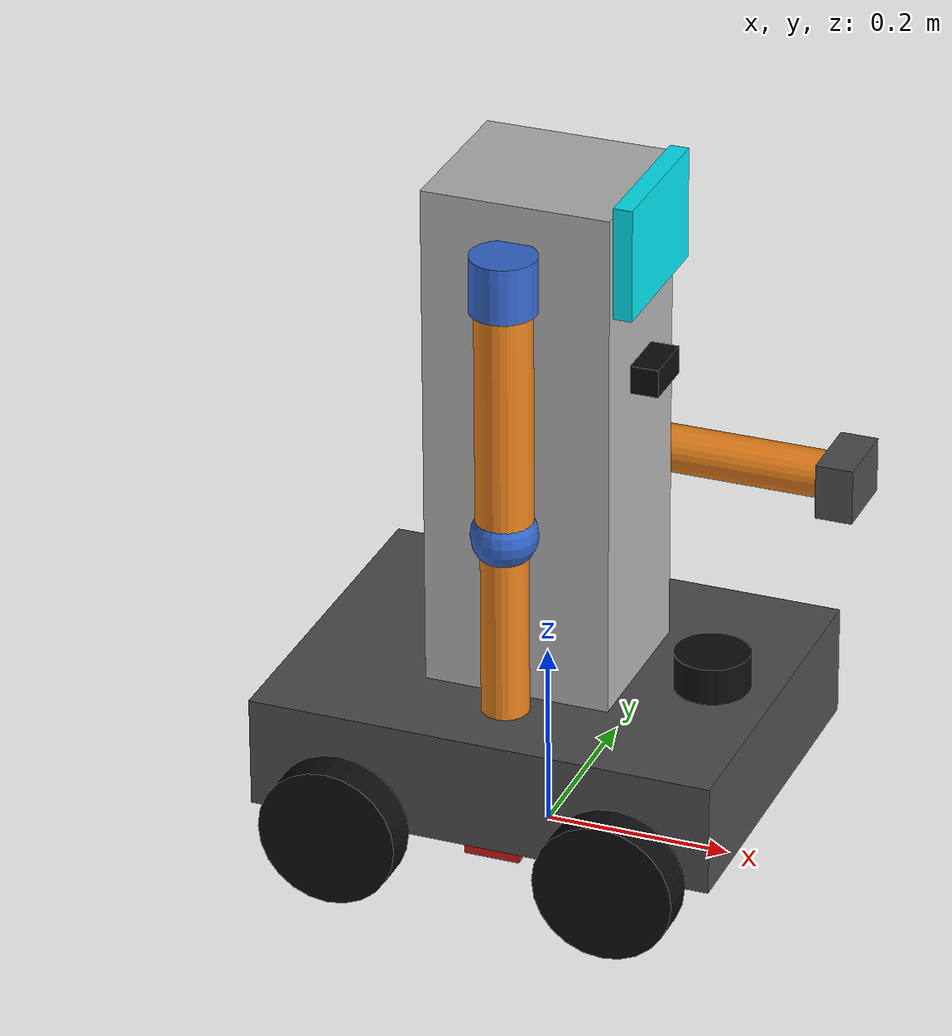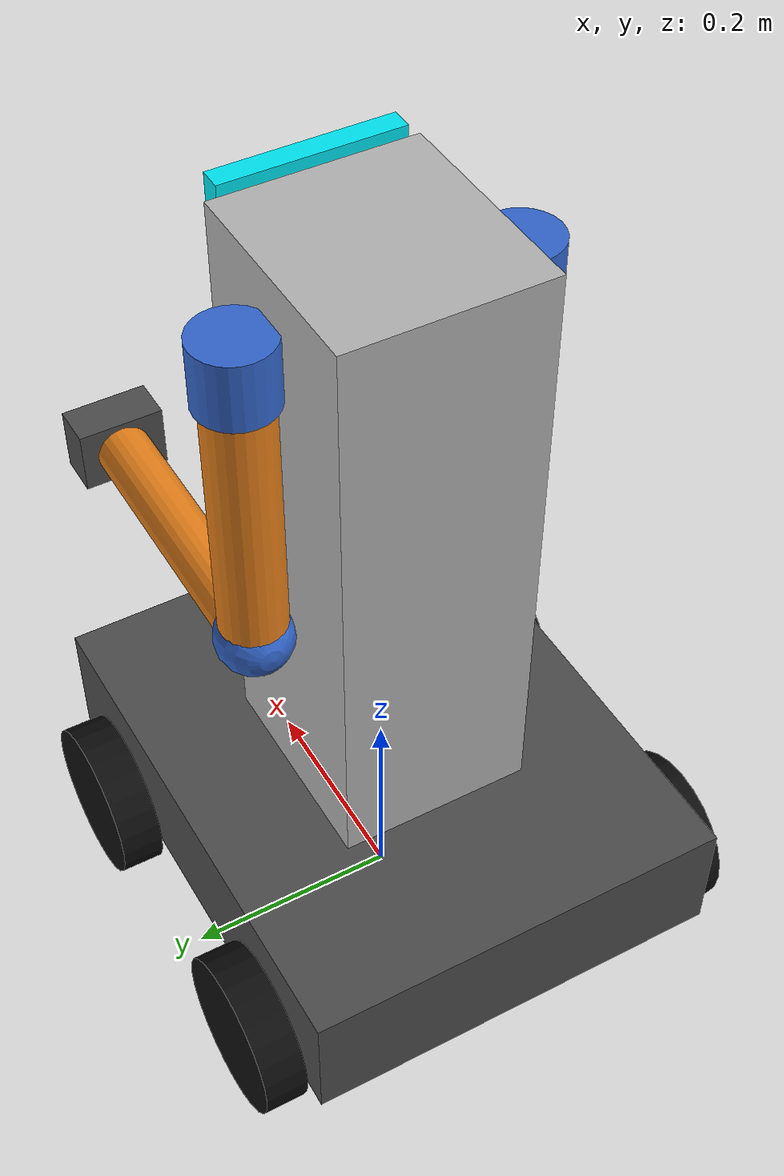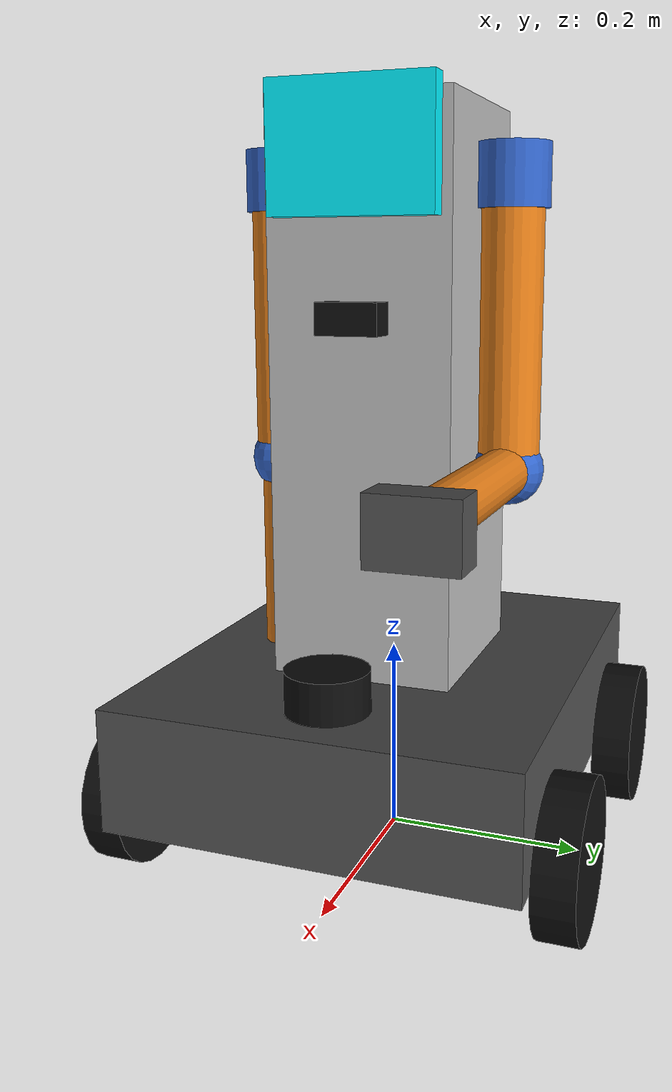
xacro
<?xml version ="1.0"?>
<robot name="tidying_robot" xmlns:xacro="http://www.ros.org/wiki/xacro">

    <!-- Define materials -->
    <material name="dark_grey">
        <color rgba="0.3 0.3 0.3 1.0"/>
    </material>
    <material name="light_grey">
        <color rgba="0.7 0.7 0.7 1.0"/>
    </material>
    <material name="blue">
        <color rgba="0.2 0.4 0.8 1.0"/>
    </material>
    <material name="black">
        <color rgba="0.05 0.05 0.05 1.0"/>
    </material>
    <material name="orange">
        <color rgba="0.9 0.5 0.1 1.0"/>
    </material>
    <material name="white">
        <color rgba="0.95 0.95 0.95 1.0"/>
    </material>
    <material name="cyan_glow">
        <color rgba="0.0 0.9 0.95 1.0"/>
    </material>
    <material name="red">
        <color rgba="0.8 0.1 0.1 1.0"/>
    </material>

    <!-- Base Link -->
    <link name="base_link">
    <visual>
      <geometry>
        <box size="0.50 0.40 0.12"/>
      </geometry>
      <origin xyz="0 0 0.06" rpy="0 0 0"/>
      <material name="dark_grey"/>
    </visual>
    <collision>
      <geometry>
        <box size="0.50 0.40 0.12"/>
      </geometry>
      <origin xyz="0 0 0.06" rpy="0 0 0"/>
    </collision>
    <inertial>
      <mass value="12.0"/>
      <origin xyz="0 0 0.06" rpy="0 0 0"/>
      <!-- Ixx=1/12*m*(y^2+z^2), Iyy=1/12*m*(x^2+z^2), Izz=1/12*m*(x^2+y^2) -->
      <inertia ixx="0.1744" iyy="0.2644" izz="0.4100"
               ixy="0" ixz="0" iyz="0"/>
        </inertial>
    </link>

    <!-- Dummy base_footprint for nav stack compatibility -->
    <link name="base_footprint"/>
    <joint name="base_footprint_joint" type="fixed">
        <parent link="base_footprint"/>
        <child link="base_link"/>
        <origin xyz="0 0 0.075" rpy="0 0 0"/>
    </joint>

    <!-- ==Wheels== -->
    <!-- Front Left Wheel -->
    <link name="front_left_wheel">
        <visual>
        <geometry>
            <cylinder radius="0.075" length="0.04"/>
        </geometry>
        <material name="black"/>
        </visual>
        <collision>
        <geometry>
            <cylinder radius="0.075" length="0.04"/>
        </geometry>
        <surface>
        <friction>
            <ode>
            <mu>1.0</mu>
            <mu2>0.8</mu2>
            <kp>1000000</kp>
            <kd>100</kd>
            </ode>
        </friction>
        </surface>
        </collision>
        <inertial>
        <mass value="0.8"/>
        <inertia ixx="0.001231" iyy="0.001231" izz="0.002250"
                ixy="0" ixz="0" iyz="0"/>
        </inertial>
    </link>
    <joint name="front_left_wheel_joint" type="continuous">
        <parent link="base_link"/>
        <child link="front_left_wheel"/>
        <!-- Wheel center at x=+0.15 (front), y=+0.22 (left), z=0 (ground contact) -->
        <origin xyz="0.15 0.22 0.0" rpy="-1.5708 0 0"/>
        <axis xyz="0 0 1"/>
        <dynamics damping="0.1" friction="0.05"/>
    </joint>

    <!-- Front-Right Wheel -->
    <link name="front_right_wheel">
        <visual>
        <geometry>
            <cylinder radius="0.075" length="0.04"/>
        </geometry>
        <material name="black"/>
        </visual>
        <collision>
        <geometry>
            <cylinder radius="0.075" length="0.04"/>
        </geometry>
        <surface>
        <friction>
            <ode>
            <mu>1.0</mu>
            <mu2>0.8</mu2>
            <kp>1000000</kp>
            <kd>100</kd>
            </ode>
        </friction>
        </surface>
        </collision>
        <inertial>
        <mass value="0.8"/>
        <inertia ixx="0.001231" iyy="0.001231" izz="0.002250"
                ixy="0" ixz="0" iyz="0"/>
        </inertial>
    </link>
    <joint name="front_right_wheel_joint" type="continuous">
        <parent link="base_link"/>
        <child link="front_right_wheel"/>
        <origin xyz="0.15 -0.22 0.0" rpy="-1.5708 0 0"/>
        <axis xyz="0 0 1"/>
        <dynamics damping="0.1" friction="0.05"/>
    </joint>

    <!-- Rear-Left Wheel -->
    <link name="rear_left_wheel">
        <visual>
        <geometry>
            <cylinder radius="0.075" length="0.04"/>
        </geometry>
        <material name="black"/>
        </visual>
        <collision>
        <geometry>
            <cylinder radius="0.075" length="0.04"/>
        </geometry>
        <surface>
        <friction>
            <ode>
            <mu>1.0</mu>
            <mu2>0.8</mu2>
            <kp>1000000</kp>
            <kd>100</kd>
            </ode>
        </friction>
        </surface>
        </collision>
        <inertial>
        <mass value="0.8"/>
        <inertia ixx="0.001231" iyy="0.001231" izz="0.002250"
                ixy="0" ixz="0" iyz="0"/>
        </inertial>
    </link>
    <joint name="rear_left_wheel_joint" type="continuous">
        <parent link="base_link"/>
        <child link="rear_left_wheel"/>
        <origin xyz="-0.15 0.22 0.0" rpy="-1.5708 0 0"/>
        <axis xyz="0 0 1"/>
        <dynamics damping="0.1" friction="0.05"/>
    </joint>

    <!-- Rear-Right Wheel -->
    <link name="rear_right_wheel">
        <visual>
        <geometry>
            <cylinder radius="0.075" length="0.04"/>
        </geometry>
        <material name="black"/>
        </visual>
        <collision>
        <geometry>
            <cylinder radius="0.075" length="0.04"/>
        </geometry>
        <surface>
        <friction>
        <ode>
            <mu>1.0</mu>
            <mu2>0.8</mu2>
            <kp>1000000</kp>
            <kd>100</kd>
        </ode>
        </friction>
        </surface>
        </collision>
        <inertial>
        <mass value="0.8"/>
        <inertia ixx="0.001231" iyy="0.001231" izz="0.002250"
                ixy="0" ixz="0" iyz="0"/>
        </inertial>
    </link>
    <joint name="rear_right_wheel_joint" type="continuous">
        <parent link="base_link"/>
        <child link="rear_right_wheel"/>
        <origin xyz="-0.15 -0.22 0.0" rpy="-1.5708 0 0"/>
        <axis xyz="0 0 1"/>
        <dynamics damping="0.1" friction="0.05"/>
    </joint>

    <!--=======TORSO(vertical column: 0.20 x 0.18 x 0.55, Sits on top of base. Mass ~5 kg=====-->
    <link name="torso_link">
    <visual>
      <geometry>
        <box size="0.20 0.18 0.55"/>
      </geometry>
      <origin xyz="0 0 0.275" rpy="0 0 0"/>
      <material name="light_grey"/>
    </visual>
    <collision>
      <geometry>
        <box size="0.20 0.18 0.55"/>
      </geometry>
      <origin xyz="0 0 0.275" rpy="0 0 0"/>
    </collision>
    <inertial>
      <mass value="5.0"/>
      <origin xyz="0 0 0.275" rpy="0 0 0"/>
      <inertia ixx="0.1394" iyy="0.1427" izz="0.0302"
               ixy="0" ixz="0" iyz="0"/>
    </inertial>
    </link>
    <joint name="torso_joint" type="fixed">
        <parent link="base_link"/>
        <child link="torso_link"/>
        <origin xyz="0 0 0.12" rpy="0 0 0"/>
    </joint>
    <!--===HEAD / LED FACE PANEL===-->
    <link name="head_link">
    <visual>
      <geometry>
        <box size="0.02 0.16 0.12"/>
      </geometry>
      <origin xyz="0 0 0.0" rpy="0 0 0"/>
      <material name="cyan_glow"/>
    </visual>
    <collision>
      <geometry>
        <box size="0.02 0.16 0.12"/>
      </geometry>
      <origin xyz="0 0 0.0" rpy="0 0 0"/>
    </collision>
    <inertial>
      <mass value="0.3"/>
      <origin xyz="0 0 0.0" rpy="0 0 0"/>
      <inertia ixx="0.001010" iyy="0.000370" izz="0.000650"
               ixy="0" ixz="0" iyz="0"/>
    </inertial>
    </link>
    <joint name="head_joint" type="fixed">
        <parent link="torso_link"/>
        <child link="head_link"/>
        <!-- Mounted on the front face of torso, at the top -->
        <origin xyz="0.11 0 0.50" rpy="0 0 0"/>
    </joint>

    <!-- ===RIGHT ARM (3 DOF) === -->
    <!-- Shoulder link -->
  <link name="right_shoulder_link">
    <visual>
      <geometry>
        <cylinder radius="0.035" length="0.06"/>
      </geometry>
      <origin xyz="0 0 0" rpy="0 0 0"/>
      <material name="blue"/>
    </visual>
    <collision>
      <geometry>
        <cylinder radius="0.035" length="0.06"/>
      </geometry>
      <origin xyz="0 0 0" rpy="0 0 0"/>
    </collision>
    <inertial>
      <mass value="0.6"/>
      <inertia ixx="0.000207" iyy="0.000207" izz="0.000368"
               ixy="0" ixz="0" iyz="0"/>
    </inertial>
  </link>
  <joint name="right_shoulder_joint" type="revolute">
    <parent link="torso_link"/>
    <child link="right_shoulder_link"/>
    <!-- Shoulder on right side, near top of torso -->
    <origin xyz="0.0 -0.12 0.48" rpy="0 0 0"/>
    <axis xyz="0 1 0"/>
    <limit lower="-2.356" upper="2.356" effort="30.0" velocity="1.5"/>
    <dynamics damping="0.5" friction="0.1"/>
  </joint>

  <!-- Upper arm -->
  <link name="right_upper_arm_link">
    <visual>
      <geometry>
        <cylinder radius="0.03" length="0.28"/>
      </geometry>
      <origin xyz="0 0 -0.14" rpy="0 0 0"/>
      <material name="orange"/>
    </visual>
    <collision>
      <geometry>
        <cylinder radius="0.03" length="0.28"/>
      </geometry>
      <origin xyz="0 0 -0.14" rpy="0 0 0"/>
    </collision>
    <inertial>
      <mass value="1.0"/>
      <origin xyz="0 0 -0.14" rpy="0 0 0"/>
      <!-- cylinder: Ixx=Iyy=1/12*m*(3r^2+h^2), Izz=1/2*m*r^2 -->
      <inertia ixx="0.006758" iyy="0.006758" izz="0.000450"
               ixy="0" ixz="0" iyz="0"/>
    </inertial>
  </link>
  <joint name="right_upper_arm_joint" type="fixed">
    <parent link="right_shoulder_link"/>
    <child link="right_upper_arm_link"/>
    <origin xyz="0 0 0" rpy="0 0 0"/>
  </joint>

  <!-- Elbow -->
  <link name="right_elbow_link">
    <visual>
      <geometry>
        <sphere radius="0.035"/>
      </geometry>
      <material name="blue"/>
    </visual>
    <collision>
      <geometry>
        <sphere radius="0.035"/>
      </geometry>
    </collision>
    <inertial>
      <mass value="0.4"/>
      <inertia ixx="0.000196" iyy="0.000196" izz="0.000196"
               ixy="0" ixz="0" iyz="0"/>
    </inertial>
    </link>

    <joint name="right_elbow_joint" type="revolute">
        <parent link="right_upper_arm_link"/>
        <child link="right_elbow_link"/>
        <origin xyz="0 0 -0.28" rpy="0 0 0"/>
        <axis xyz="0 1 0"/>
        <limit lower="-2.356" upper="0.0" effort="20.0" velocity="1.5"/>
        <dynamics damping="0.4" friction="0.08"/>
    </joint>

    <!-- Forearm -->
    <link name="right_forearm_link">
    <visual>
      <geometry>
        <cylinder radius="0.025" length="0.26"/>
      </geometry>
      <origin xyz="0 0 -0.13" rpy="0 0 0"/>
      <material name="orange"/>
    </visual>
    <collision>
      <geometry>
        <cylinder radius="0.025" length="0.26"/>
      </geometry>
      <origin xyz="0 0 -0.13" rpy="0 0 0"/>
    </collision>
    <inertial>
      <mass value="0.7"/>
      <origin xyz="0 0 -0.13" rpy="0 0 0"/>
      <inertia ixx="0.004011" iyy="0.004011" izz="0.000219"
               ixy="0" ixz="0" iyz="0"/>
    </inertial>
    </link>
    <joint name="right_forearm_joint" type="fixed">
        <parent link="right_elbow_link"/>
        <child link="right_forearm_link"/>
        <origin xyz="0 0 0" rpy="0 0 0"/>
    </joint>

    <!-- Wrist -->
    <link name="right_wrist_link">
    <visual>
      <geometry>
        <cylinder radius="0.025" length="0.03"/>
      </geometry>
      <material name="blue"/>
    </visual>
    <collision>
      <geometry>
        <cylinder radius="0.025" length="0.03"/>
      </geometry>
    </collision>
    <inertial>
      <mass value="0.2"/>
      <inertia ixx="0.0000194" iyy="0.0000194" izz="0.0000625"
               ixy="0" ixz="0" iyz="0"/>
    </inertial>
    </link>
    <joint name="right_wrist_joint" type="revolute">
        <parent link="right_forearm_link"/>
        <child link="right_wrist_link"/>
        <origin xyz="0 0 -0.26" rpy="0 0 0"/>
        <axis xyz="0 1 0"/>
        <limit lower="-1.571" upper="1.571" effort="10.0" velocity="2.0"/>
        <dynamics damping="0.3" friction="0.05"/>
    </joint>

    <!-- Gripper (parallel-jaw style, modeled as two finger pads + a palm) -->
    <!-- Palm -->
    <link name="right_gripper_palm">
    <visual>
      <geometry>
        <box size="0.06 0.08 0.02"/>
      </geometry>
      <material name="dark_grey"/>
    </visual>
    <collision>
      <geometry>
        <box size="0.06 0.08 0.02"/>
      </geometry>
    </collision>
    <inertial>
      <mass value="0.15"/>
      <inertia ixx="0.0000853" iyy="0.0000503" izz="0.000125"
               ixy="0" ixz="0" iyz="0"/>
    </inertial>
    </link>
    <joint name="right_gripper_palm_joint" type="fixed">
        <parent link="right_wrist_link"/>
        <child link="right_gripper_palm"/>
        <origin xyz="0 0 -0.025" rpy="0 0 0"/>
    </joint>

    <!-- Left Finger -->
    <link name="right_gripper_left_finger">
    <visual>
      <geometry>
        <box size="0.06 0.01 0.06"/>
      </geometry>
      <origin xyz="0 0 -0.03" rpy="0 0 0"/>
      <material name="red"/>
    </visual>
    <collision>
      <geometry>
        <box size="0.06 0.01 0.06"/>
      </geometry>
      <origin xyz="0 0 -0.03" rpy="0 0 0"/>
    </collision>
    <inertial>
      <mass value="0.05"/>
      <origin xyz="0 0 -0.03" rpy="0 0 0"/>
      <inertia ixx="0.0000175" iyy="0.0000154" izz="0.0000042"
               ixy="0" ixz="0" iyz="0"/>
    </inertial>
    </link>
    <joint name="right_gripper_left_finger_joint" type="prismatic">
        <parent link="right_gripper_palm"/>
        <child link="right_gripper_left_finger"/>
        <origin xyz="0 0.035 -0.01" rpy="0 0 0"/>
        <axis xyz="0 1 0"/>
        <limit lower="0.0" upper="0.02" effort="5.0" velocity="0.5"/>
        <dynamics damping="0.2" friction="0.05"/>
    </joint>

    <!-- Right Finger -->
    <link name="right_gripper_right_finger">
    <visual>
      <geometry>
        <box size="0.06 0.01 0.06"/>
      </geometry>
      <origin xyz="0 0 -0.03" rpy="0 0 0"/>
      <material name="red"/>
    </visual>
    <collision>
      <geometry>
        <box size="0.06 0.01 0.06"/>
      </geometry>
      <origin xyz="0 0 -0.03" rpy="0 0 0"/>
    </collision>
    <inertial>
      <mass value="0.05"/>
      <origin xyz="0 0 -0.03" rpy="0 0 0"/>
      <inertia ixx="0.0000175" iyy="0.0000154" izz="0.0000042"
               ixy="0" ixz="0" iyz="0"/>
        </inertial>
    </link>
    <joint name="right_gripper_right_finger_joint" type="prismatic">
        <parent link="right_gripper_palm"/>
        <child link="right_gripper_right_finger"/>
        <origin xyz="0 -0.035 -0.01" rpy="0 0 0"/>
        <axis xyz="0 -1 0"/>
        <limit lower="0.0" upper="0.02" effort="5.0" velocity="0.5"/>
        <dynamics damping="0.2" friction="0.05"/>
    </joint>

    <!--  LEFT ARM (cosmetic / static — mirrors right arm visually)    -->
    <link name="left_shoulder_link">
    <visual>
      <geometry>
        <cylinder radius="0.035" length="0.06"/>
      </geometry>
      <material name="blue"/>
    </visual>
    <collision>
      <geometry>
        <cylinder radius="0.035" length="0.06"/>
      </geometry>
    </collision>
    <inertial>
      <mass value="0.6"/>
      <inertia ixx="0.000207" iyy="0.000207" izz="0.000368"
               ixy="0" ixz="0" iyz="0"/>
    </inertial>
    </link>
    <joint name="left_shoulder_joint" type="fixed">
        <parent link="torso_link"/>
        <child link="left_shoulder_link"/>
        <origin xyz="0.0 0.12 0.48" rpy="0 0 0"/>
    </joint>

    <link name="left_upper_arm_link">
    <visual>
      <geometry>
        <cylinder radius="0.03" length="0.28"/>
      </geometry>
      <origin xyz="0 0 -0.14" rpy="0 0 0"/>
      <material name="orange"/>
    </visual>
    <collision>
      <geometry>
        <cylinder radius="0.03" length="0.28"/>
      </geometry>
      <origin xyz="0 0 -0.14" rpy="0 0 0"/>
    </collision>
    <inertial>
      <mass value="1.0"/>
      <origin xyz="0 0 -0.14" rpy="0 0 0"/>
      <inertia ixx="0.006758" iyy="0.006758" izz="0.000450"
               ixy="0" ixz="0" iyz="0"/>
    </inertial>
    </link>
    <joint name="left_upper_arm_joint" type="fixed">
        <parent link="left_shoulder_link"/>
        <child link="left_upper_arm_link"/>
        <origin xyz="0 0 0" rpy="0 0 0"/>
    </joint>

    <link name="left_elbow_link">
    <visual>
      <geometry>
        <sphere radius="0.035"/>
      </geometry>
      <material name="blue"/>
    </visual>
    <collision>
      <geometry>
        <sphere radius="0.035"/>
      </geometry>
    </collision>
    <inertial>
      <mass value="0.4"/>
      <inertia ixx="0.000196" iyy="0.000196" izz="0.000196"
               ixy="0" ixz="0" iyz="0"/>
    </inertial>
    </link>
    <joint name="left_elbow_joint" type="fixed">
        <parent link="left_upper_arm_link"/>
        <child link="left_elbow_link"/>
        <origin xyz="0 0 -0.28" rpy="0 -1.5708 0"/>
    </joint>

    <link name="left_forearm_link">
    <visual>
      <geometry>
        <cylinder radius="0.025" length="0.26"/>
      </geometry>
      <origin xyz="0 0 -0.13" rpy="0 0 0"/>
      <material name="orange"/>
    </visual>
    <collision>
      <geometry>
        <cylinder radius="0.025" length="0.26"/>
      </geometry>
      <origin xyz="0 0 -0.13" rpy="0 0 0"/>
    </collision>
    <inertial>
      <mass value="0.7"/>
      <origin xyz="0 0 -0.13" rpy="0 0 0"/>
      <inertia ixx="0.004011" iyy="0.004011" izz="0.000219"
               ixy="0" ixz="0" iyz="0"/>
    </inertial>
    </link>
    <joint name="left_forearm_joint" type="fixed">
        <parent link="left_elbow_link"/>
        <child link="left_forearm_link"/>
        <origin xyz="0 0 0" rpy="0 0 0"/>
    </joint>

    <link name="left_hand_link">
    <visual>
      <geometry>
        <box size="0.06 0.08 0.04"/>
      </geometry>
      <material name="dark_grey"/>
    </visual>
    <collision>
      <geometry>
        <box size="0.06 0.08 0.04"/>
      </geometry>
    </collision>
    <inertial>
      <mass value="0.2"/>
      <inertia ixx="0.000107" iyy="0.0000867" izz="0.000133"
               ixy="0" ixz="0" iyz="0"/>
    </inertial>
    </link>
    <joint name="left_hand_joint" type="fixed">
        <parent link="left_forearm_link"/>
        <child link="left_hand_link"/>
        <origin xyz="0 0 -0.28" rpy="0 0 0"/>
    </joint>
    <!--  CAMERA — mounted on front of torso (not head)-->
    <link name="camera_link">
    <visual>
      <geometry>
        <box size="0.03 0.06 0.03"/>
      </geometry>
      <material name="black"/>
    </visual>
    <collision>
      <geometry>
        <box size="0.03 0.06 0.03"/>
      </geometry>
    </collision>
    <inertial>
      <mass value="0.1"/>
      <inertia ixx="0.0000375" iyy="0.0000150" izz="0.0000375"
               ixy="0" ixz="0" iyz="0"/>
    </inertial>
    </link>
    <joint name="camera_joint" type="fixed">
        <parent link="torso_link"/>
        <child link="camera_link"/>
        <!-- Front face of torso, roughly mid-height -->
        <origin xyz="0.115 0 0.35" rpy="0 0 0"/>
    </joint>

    <!-- Camera optical frame (ROS convention: z forward, x right, y down) -->
    <link name="camera_optical_frame"/>
    <joint name="camera_optical_joint" type="fixed">
        <parent link="camera_link"/>
        <child link="camera_optical_frame"/>
        <origin xyz="0 0 0" rpy="-1.5708 0 -1.5708"/>
    </joint>

    <!--  LIDAR — 2D scanning LiDAR on top of base, front              -->

    <link name="lidar_link">
        <visual>
        <geometry>
            <cylinder radius="0.04" length="0.04"/>
        </geometry>
        <material name="black"/>
        </visual>
        <collision>
        <geometry>
            <cylinder radius="0.04" length="0.04"/>
        </geometry>
        </collision>
        <inertial>
        <mass value="0.2"/>
        <inertia ixx="0.0000453" iyy="0.0000453" izz="0.000160"
                ixy="0" ixz="0" iyz="0"/>
        </inertial>
    </link>
    <joint name="lidar_joint" type="fixed">
        <parent link="base_link"/>
        <child link="lidar_link"/>
        <!-- Mounted on top of the base plate, front-center -->
        <origin xyz="0.18 0 0.14" rpy="0 0 0"/>
    </joint>
    <!--  GAZEBO PLUGINS  (Gazebo Harmonic / gz-sim)                   -->
    <gazebo>
        <!-- Skid-steer drive controller -->
        <plugin filename="gz-sim-diff-drive-system" name="gz::sim::systems::DiffDrive">
            <left_joint>front_left_wheel_joint</left_joint>
            <left_joint>rear_left_wheel_joint</left_joint>
            <right_joint>front_right_wheel_joint</right_joint>
            <right_joint>rear_right_wheel_joint</right_joint>
            <wheel_separation>0.44</wheel_separation>
            <wheel_radius>0.075</wheel_radius>
            <max_linear_acceleration>1.0</max_linear_acceleration>
            <max_angular_acceleration>2.0</max_angular_acceleration>
            <topic>/cmd_vel</topic>
            <odom_topic>/odom</odom_topic>
            <tf_topic>/tf</tf_topic>
            <frame_id>odom</frame_id>
            <child_frame_id>base_footprint</child_frame_id>
            <odom_publish_frequency>50</odom_publish_frequency>
        </plugin>
        <!-- Joint position controller for arm -->
        <plugin filename="gz-sim-joint-position-controller-system"
                name="gz::sim::systems::JointPositionController">
            <joint_name>right_shoulder_joint</joint_name>
            <topic>/right_shoulder_joint/cmd</topic>
            <p_gain>30.0</p_gain>
            <i_gain>0.1</i_gain>
            <d_gain>5.0</d_gain>
        </plugin>
        <plugin filename="gz-sim-joint-position-controller-system"
                name="gz::sim::systems::JointPositionController">
            <joint_name>right_elbow_joint</joint_name>
            <topic>/right_elbow_joint/cmd</topic>
            <p_gain>20.0</p_gain>
            <i_gain>0.1</i_gain>
            <d_gain>3.0</d_gain>
        </plugin>
        <plugin filename="gz-sim-joint-position-controller-system"
                name="gz::sim::systems::JointPositionController">
            <joint_name>right_wrist_joint</joint_name>
            <topic>/right_wrist_joint/cmd</topic>
            <p_gain>10.0</p_gain>
            <i_gain>0.05</i_gain>
            <d_gain>2.0</d_gain>
        </plugin>
        <plugin filename="gz-sim-joint-position-controller-system"
                name="gz::sim::systems::JointPositionController">
            <joint_name>right_gripper_left_finger_joint</joint_name>
            <topic>/right_gripper_left_finger_joint/cmd</topic>
            <p_gain>5.0</p_gain>
            <i_gain>0.01</i_gain>
            <d_gain>1.0</d_gain>
        </plugin>
        <plugin filename="gz-sim-joint-position-controller-system"
                name="gz::sim::systems::JointPositionController">
            <joint_name>right_gripper_right_finger_joint</joint_name>
            <topic>/right_gripper_right_finger_joint/cmd</topic>
            <p_gain>5.0</p_gain>
            <i_gain>0.01</i_gain>
            <d_gain>1.0</d_gain>
        </plugin>

        <!-- Joint state publisher — feeds robot_state_publisher via bridge -->
        <plugin filename="gz-sim-joint-state-publisher-system"
                name="gz::sim::systems::JointStatePublisher">
            <joint_name>front_left_wheel_joint</joint_name>
            <joint_name>front_right_wheel_joint</joint_name>
            <joint_name>rear_left_wheel_joint</joint_name>
            <joint_name>rear_right_wheel_joint</joint_name>
            <joint_name>right_shoulder_joint</joint_name>
            <joint_name>right_elbow_joint</joint_name>
            <joint_name>right_wrist_joint</joint_name>
            <joint_name>right_gripper_left_finger_joint</joint_name>
            <joint_name>right_gripper_right_finger_joint</joint_name>
            <topic>/joint_states</topic>
        </plugin>

    </gazebo>
    <!-- 2D LiDAR sensor (Gazebo Harmonic) -->
    <gazebo reference="lidar_link">
        <sensor name="lidar" type="gpu_lidar">
        <always_on>true</always_on>
        <update_rate>10</update_rate>
        <lidar>
            <scan>
            <horizontal>
                <samples>360</samples>
                <resolution>1</resolution>
                <min_angle>-3.14159</min_angle>
                <max_angle>3.14159</max_angle>
            </horizontal>
            <vertical>
                <samples>1</samples>
                <resolution>1</resolution>
                <min_angle>0</min_angle>
                <max_angle>0</max_angle>
            </vertical>
            </scan>
            <range>
            <min>0.12</min>
            <max>10.0</max>
            <resolution>0.01</resolution>
            </range>
        </lidar>
        <topic>/scan</topic>
        <gz_frame_id>lidar_link</gz_frame_id>
        </sensor>
    </gazebo>
    <!-- RGB Camera sensor (Gazebo Harmonic) -->
    <gazebo reference="camera_link">
        <sensor name="camera" type="camera">
            <always_on>true</always_on>
            <update_rate>15</update_rate>
            <camera>
                <horizontal_fov>1.3962</horizontal_fov>
                <image>
                    <width>640</width>
                    <height>480</height>
                    <format>R8G8B8</format>
                </image>
                <clip>
                    <near>0.05</near>
                    <far>15.0</far>
                </clip>
            </camera>
            <topic>/camera/image_raw</topic>
            <gz_frame_id>camera_link</gz_frame_id>
        </sensor>
    </gazebo>

</robot>
